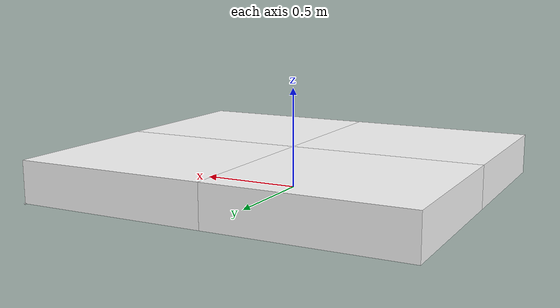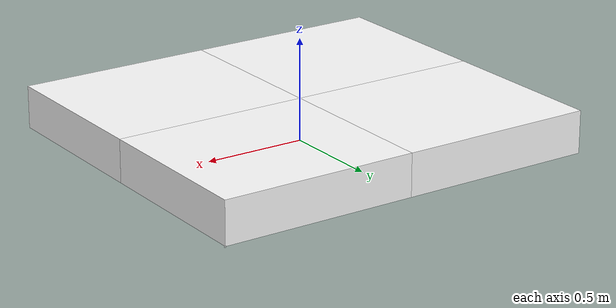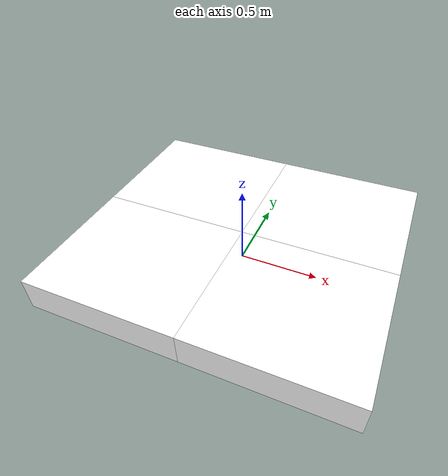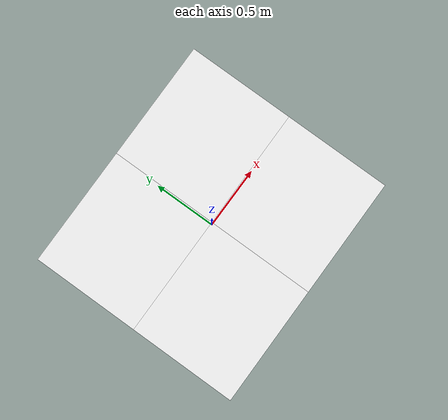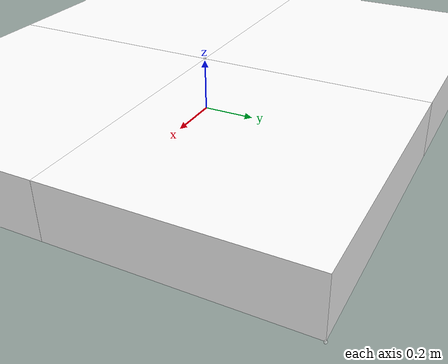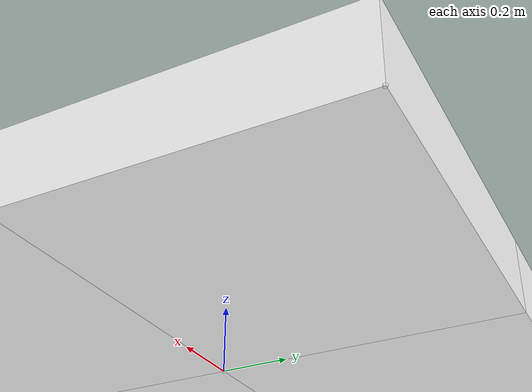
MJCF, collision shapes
<mujoco model="pallet_c1">
  <default>
    <default class="visual">
      <geom group="1" type="mesh" contype="0" conaffinity="0" density="100"/>
    </default>
    <default class="collision">
      <geom group="0" type="mesh" density="100" solimp="0.95 0.98 0.001" solref="0.004 1" rgba="1 1 1 0.25"/>
    </default>
  </default>
  <asset>
    <texture type="2d" name="T_Pallet_A3_Albedo" file="textures/T_Pallet_A3_Albedo.png"/>
    <material name="Pallet.003" texture="T_Pallet_A3_Albedo" specular="0.5" shininess="0.25"/>
    <mesh file="meshes/pallet_c1.obj" name="pallet_c1"/>
  </asset>
  <worldbody>
    <body>
      <body name="object">
        <geom material="Pallet.003" mesh="pallet_c1" class="visual"/>
        <geom type="box" pos="0.48058129040560554 0.43205089947639624 0.104357" size="0.103815 0.4314971266496818 0.48101530109945007" quat="0.00015899455366083493 0.7071067633114054 0.00015899455366092752 -0.7071067633114057" class="collision"/>
        <geom type="box" pos="-0.48144921451557676 0.4316182699884387 0.104357" size="0.103815 0.4314971266496818 0.48101530109945007" quat="0.00015899455366083493 0.7071067633114054 0.00015899455366092752 -0.7071067633114057" class="collision"/>
        <geom type="box" pos="0.48096938280210705 -0.4309432665595151 0.104357" size="0.103815 0.4314971266496818 0.48101530109945007" quat="0.00015899455366083493 0.7071067633114054 0.00015899455366092752 -0.7071067633114057" class="collision"/>
        <geom type="box" pos="-0.48106112211907526 -0.4313758960474726 0.104357" size="0.103815 0.4314971266496818 0.48101530109945007" quat="0.00015899455366083493 0.7071067633114054 0.00015899455366092752 -0.7071067633114057" class="collision"/>
      </body>
      <site name="bottom_site" pos="0 0 0.000542" rgba="1 1 1 0.5" size="0.005"/>
      <site name="top_site" pos="0 0 0.208172" rgba="1 1 1 0.5" size="0.005"/>
      <site name="horizontal_radius_site" pos="0.962177 0.863023 0" rgba="1 1 1 0.5" size="0.005"/>
    </body>
  </worldbody>
</mujoco>
